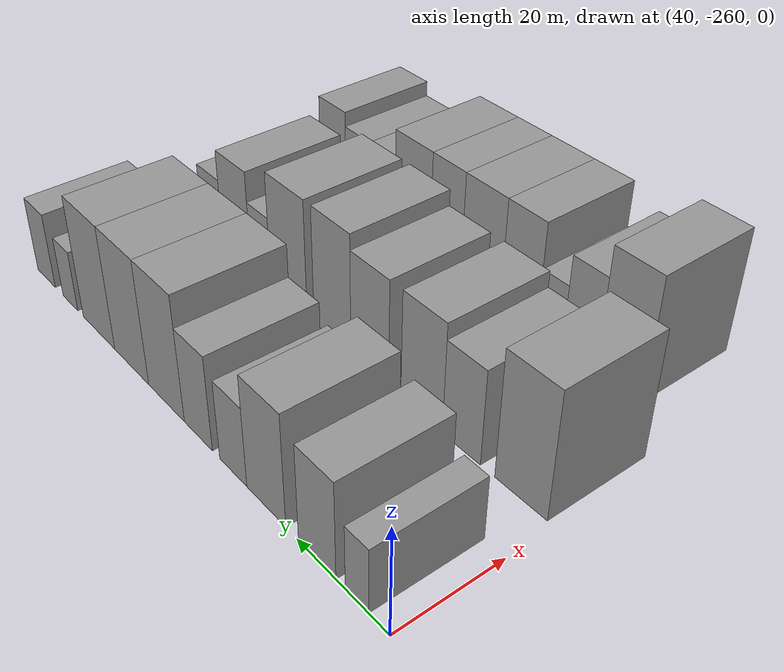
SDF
<sdf version="1.6">
 <world name="default">
  <model name="building_10">
   <static>1</static>
   <pose>50.0000 -253.2328 0 0.000000 0.000000 0.000000</pose>
   <link name="link">
    <pose>0 0 6.00 0 0 0</pose>
    <collision name="collision"><geometry><box><size>20.0000 4.9211 12.0000</size></box></geometry></collision>
    <visual name="visual">
     <cast_shadows>0</cast_shadows>
     <geometry><box><size>20.0000 4.9211 12.0000</size></box></geometry>
     <material>
      <script>
       <uri>model://grey_wall/materials/scripts</uri>
       <uri>model://grey_wall/materials/textures</uri>
       <name>vrc/grey_wall</name>
      </script>
     </material>
    </visual>
   </link>
  </model>
  <model name="building_11">
   <static>1</static>
   <pose>50.0000 -244.5584 0 0.000000 0.000000 0.000000</pose>
   <link name="link">
    <pose>0 0 9.00 0 0 0</pose>
    <collision name="collision"><geometry><box><size>20.0000 8.4279 18.0000</size></box></geometry></collision>
    <visual name="visual">
     <cast_shadows>0</cast_shadows>
     <geometry><box><size>20.0000 8.4279 18.0000</size></box></geometry>
     <material>
      <script>
       <uri>model://grey_wall/materials/scripts</uri>
       <uri>model://grey_wall/materials/textures</uri>
       <name>vrc/grey_wall</name>
      </script>
     </material>
    </visual>
   </link>
  </model>
  <model name="building_12">
   <static>1</static>
   <pose>50.0000 -232.5456 0 0.000000 0.000000 0.000000</pose>
   <link name="link">
    <pose>0 0 10.50 0 0 0</pose>
    <collision name="collision"><geometry><box><size>20.0000 9.5977 21.0000</size></box></geometry></collision>
    <visual name="visual">
     <cast_shadows>0</cast_shadows>
     <geometry><box><size>20.0000 9.5977 21.0000</size></box></geometry>
     <material>
      <script>
       <uri>model://grey_wall/materials/scripts</uri>
       <uri>model://grey_wall/materials/textures</uri>
       <name>vrc/grey_wall</name>
      </script>
     </material>
    </visual>
   </link>
  </model>
  <model name="building_13">
   <static>1</static>
   <pose>50.0000 -224.1726 0 0.000000 0.000000 0.000000</pose>
   <link name="link">
    <pose>0 0 7.50 0 0 0</pose>
    <collision name="collision"><geometry><box><size>20.0000 7.1484 15.0000</size></box></geometry></collision>
    <visual name="visual">
     <cast_shadows>0</cast_shadows>
     <geometry><box><size>20.0000 7.1484 15.0000</size></box></geometry>
     <material>
      <script>
       <uri>model://grey_wall/materials/scripts</uri>
       <uri>model://grey_wall/materials/textures</uri>
       <name>vrc/grey_wall</name>
      </script>
     </material>
    </visual>
   </link>
  </model>
  <model name="building_14">
   <static>1</static>
   <pose>50.0000 -214.6508 0 0.000000 0.000000 0.000000</pose>
   <link name="link">
    <pose>0 0 9.00 0 0 0</pose>
    <collision name="collision"><geometry><box><size>20.0000 7.8951 18.0000</size></box></geometry></collision>
    <visual name="visual">
     <cast_shadows>0</cast_shadows>
     <geometry><box><size>20.0000 7.8951 18.0000</size></box></geometry>
     <material>
      <script>
       <uri>model://grey_wall/materials/scripts</uri>
       <uri>model://grey_wall/materials/textures</uri>
       <name>vrc/grey_wall</name>
      </script>
     </material>
    </visual>
   </link>
  </model>
  <model name="building_15">
   <static>1</static>
   <pose>50.0000 -205.3336 0 0.000000 0.000000 0.000000</pose>
   <link name="link">
    <pose>0 0 12.00 0 0 0</pose>
    <collision name="collision"><geometry><box><size>20.0000 10.7393 24.0000</size></box></geometry></collision>
    <visual name="visual">
     <cast_shadows>0</cast_shadows>
     <geometry><box><size>20.0000 10.7393 24.0000</size></box></geometry>
     <material>
      <script>
       <uri>model://grey_wall/materials/scripts</uri>
       <uri>model://grey_wall/materials/textures</uri>
       <name>vrc/grey_wall</name>
      </script>
     </material>
    </visual>
   </link>
  </model>
  <model name="building_16">
   <static>1</static>
   <pose>50.0000 -194.4689 0 0.000000 0.000000 0.000000</pose>
   <link name="link">
    <pose>0 0 12.00 0 0 0</pose>
    <collision name="collision"><geometry><box><size>20.0000 10.9901 24.0000</size></box></geometry></collision>
    <visual name="visual">
     <cast_shadows>0</cast_shadows>
     <geometry><box><size>20.0000 10.9901 24.0000</size></box></geometry>
     <material>
      <script>
       <uri>model://grey_wall/materials/scripts</uri>
       <uri>model://grey_wall/materials/textures</uri>
       <name>vrc/grey_wall</name>
      </script>
     </material>
    </visual>
   </link>
  </model>
  <model name="building_17">
   <static>1</static>
   <pose>50.0000 -183.5001 0 0.000000 0.000000 0.000000</pose>
   <link name="link">
    <pose>0 0 12.00 0 0 0</pose>
    <collision name="collision"><geometry><box><size>20.0000 10.9474 24.0000</size></box></geometry></collision>
    <visual name="visual">
     <cast_shadows>0</cast_shadows>
     <geometry><box><size>20.0000 10.9474 24.0000</size></box></geometry>
     <material>
      <script>
       <uri>model://grey_wall/materials/scripts</uri>
       <uri>model://grey_wall/materials/textures</uri>
       <name>vrc/grey_wall</name>
      </script>
     </material>
    </visual>
   </link>
  </model>
  <model name="building_18">
   <static>1</static>
   <pose>50.0000 -173.3073 0 0.000000 0.000000 0.000000</pose>
   <link name="link">
    <pose>0 0 6.00 0 0 0</pose>
    <collision name="collision"><geometry><box><size>20.0000 5.4383 12.0000</size></box></geometry></collision>
    <visual name="visual">
     <cast_shadows>0</cast_shadows>
     <geometry><box><size>20.0000 5.4383 12.0000</size></box></geometry>
     <material>
      <script>
       <uri>model://grey_wall/materials/scripts</uri>
       <uri>model://grey_wall/materials/textures</uri>
       <name>vrc/grey_wall</name>
      </script>
     </material>
    </visual>
   </link>
  </model>
  <model name="building_19">
   <static>1</static>
   <pose>50.0000 -164.1934 0 0.000000 0.000000 0.000000</pose>
   <link name="link">
    <pose>0 0 7.50 0 0 0</pose>
    <collision name="collision"><geometry><box><size>20.0000 6.7896 15.0000</size></box></geometry></collision>
    <visual name="visual">
     <cast_shadows>0</cast_shadows>
     <geometry><box><size>20.0000 6.7896 15.0000</size></box></geometry>
     <material>
      <script>
       <uri>model://grey_wall/materials/scripts</uri>
       <uri>model://grey_wall/materials/textures</uri>
       <name>vrc/grey_wall</name>
      </script>
     </material>
    </visual>
   </link>
  </model>
  <model name="building_84">
   <static>1</static>
   <pose>79.0000 -253.3897 0 0.000000 0.000000 0.000000</pose>
   <link name="link">
    <pose>0 0 12.00 0 0 0</pose>
    <collision name="collision"><geometry><box><size>20.0000 10.6205 24.0000</size></box></geometry></collision>
    <visual name="visual">
     <cast_shadows>0</cast_shadows>
     <geometry><box><size>20.0000 10.6205 24.0000</size></box></geometry>
     <material>
      <script>
       <uri>model://grey_wall/materials/scripts</uri>
       <uri>model://grey_wall/materials/textures</uri>
       <name>vrc/grey_wall</name>
      </script>
     </material>
    </visual>
   </link>
  </model>
  <model name="building_85">
   <static>1</static>
   <pose>79.0000 -240.8766 0 0.000000 0.000000 0.000000</pose>
   <link name="link">
    <pose>0 0 9.00 0 0 0</pose>
    <collision name="collision"><geometry><box><size>20.0000 8.4058 18.0000</size></box></geometry></collision>
    <visual name="visual">
     <cast_shadows>0</cast_shadows>
     <geometry><box><size>20.0000 8.4058 18.0000</size></box></geometry>
     <material>
      <script>
       <uri>model://grey_wall/materials/scripts</uri>
       <uri>model://grey_wall/materials/textures</uri>
       <name>vrc/grey_wall</name>
      </script>
     </material>
    </visual>
   </link>
  </model>
  <model name="building_86">
   <static>1</static>
   <pose>79.0000 -231.7666 0 0.000000 0.000000 0.000000</pose>
   <link name="link">
    <pose>0 0 10.50 0 0 0</pose>
    <collision name="collision"><geometry><box><size>20.0000 9.8141 21.0000</size></box></geometry></collision>
    <visual name="visual">
     <cast_shadows>0</cast_shadows>
     <geometry><box><size>20.0000 9.8141 21.0000</size></box></geometry>
     <material>
      <script>
       <uri>model://grey_wall/materials/scripts</uri>
       <uri>model://grey_wall/materials/textures</uri>
       <name>vrc/grey_wall</name>
      </script>
     </material>
    </visual>
   </link>
  </model>
  <model name="building_87">
   <static>1</static>
   <pose>79.0000 -219.0505 0 0.000000 0.000000 0.000000</pose>
   <link name="link">
    <pose>0 0 10.50 0 0 0</pose>
    <collision name="collision"><geometry><box><size>20.0000 9.6182 21.0000</size></box></geometry></collision>
    <visual name="visual">
     <cast_shadows>0</cast_shadows>
     <geometry><box><size>20.0000 9.6182 21.0000</size></box></geometry>
     <material>
      <script>
       <uri>model://grey_wall/materials/scripts</uri>
       <uri>model://grey_wall/materials/textures</uri>
       <name>vrc/grey_wall</name>
      </script>
     </material>
    </visual>
   </link>
  </model>
  <model name="building_88">
   <static>1</static>
   <pose>79.0000 -209.2514 0 0.000000 0.000000 0.000000</pose>
   <link name="link">
    <pose>0 0 12.00 0 0 0</pose>
    <collision name="collision"><geometry><box><size>20.0000 9.9800 24.0000</size></box></geometry></collision>
    <visual name="visual">
     <cast_shadows>0</cast_shadows>
     <geometry><box><size>20.0000 9.9800 24.0000</size></box></geometry>
     <material>
      <script>
       <uri>model://grey_wall/materials/scripts</uri>
       <uri>model://grey_wall/materials/textures</uri>
       <name>vrc/grey_wall</name>
      </script>
     </material>
    </visual>
   </link>
  </model>
  <model name="building_89">
   <static>1</static>
   <pose>79.0000 -196.9439 0 0.000000 0.000000 0.000000</pose>
   <link name="link">
    <pose>0 0 12.00 0 0 0</pose>
    <collision name="collision"><geometry><box><size>20.0000 10.6351 24.0000</size></box></geometry></collision>
    <visual name="visual">
     <cast_shadows>0</cast_shadows>
     <geometry><box><size>20.0000 10.6351 24.0000</size></box></geometry>
     <material>
      <script>
       <uri>model://grey_wall/materials/scripts</uri>
       <uri>model://grey_wall/materials/textures</uri>
       <name>vrc/grey_wall</name>
      </script>
     </material>
    </visual>
   </link>
  </model>
  <model name="building_90">
   <static>1</static>
   <pose>79.0000 -188.5260 0 0.000000 0.000000 0.000000</pose>
   <link name="link">
    <pose>0 0 7.50 0 0 0</pose>
    <collision name="collision"><geometry><box><size>20.0000 6.2005 15.0000</size></box></geometry></collision>
    <visual name="visual">
     <cast_shadows>0</cast_shadows>
     <geometry><box><size>20.0000 6.2005 15.0000</size></box></geometry>
     <material>
      <script>
       <uri>model://grey_wall/materials/scripts</uri>
       <uri>model://grey_wall/materials/textures</uri>
       <name>vrc/grey_wall</name>
      </script>
     </material>
    </visual>
   </link>
  </model>
  <model name="building_91">
   <static>1</static>
   <pose>79.0000 -180.8947 0 0.000000 0.000000 0.000000</pose>
   <link name="link">
    <pose>0 0 10.50 0 0 0</pose>
    <collision name="collision"><geometry><box><size>20.0000 9.0622 21.0000</size></box></geometry></collision>
    <visual name="visual">
     <cast_shadows>0</cast_shadows>
     <geometry><box><size>20.0000 9.0622 21.0000</size></box></geometry>
     <material>
      <script>
       <uri>model://grey_wall/materials/scripts</uri>
       <uri>model://grey_wall/materials/textures</uri>
       <name>vrc/grey_wall</name>
      </script>
     </material>
    </visual>
   </link>
  </model>
  <model name="building_92">
   <static>1</static>
   <pose>79.0000 -172.8697 0 0.000000 0.000000 0.000000</pose>
   <link name="link">
    <pose>0 0 7.50 0 0 0</pose>
    <collision name="collision"><geometry><box><size>20.0000 6.9878 15.0000</size></box></geometry></collision>
    <visual name="visual">
     <cast_shadows>0</cast_shadows>
     <geometry><box><size>20.0000 6.9878 15.0000</size></box></geometry>
     <material>
      <script>
       <uri>model://grey_wall/materials/scripts</uri>
       <uri>model://grey_wall/materials/textures</uri>
       <name>vrc/grey_wall</name>
      </script>
     </material>
    </visual>
   </link>
  </model>
  <model name="building_162">
   <static>1</static>
   <pose>108.0000 -245.5852 0 0.000000 0.000000 0.000000</pose>
   <link name="link">
    <pose>0 0 12.00 0 0 0</pose>
    <collision name="collision"><geometry><box><size>20.0000 9.8881 24.0000</size></box></geometry></collision>
    <visual name="visual">
     <cast_shadows>0</cast_shadows>
     <geometry><box><size>20.0000 9.8881 24.0000</size></box></geometry>
     <material>
      <script>
       <uri>model://grey_wall/materials/scripts</uri>
       <uri>model://grey_wall/materials/textures</uri>
       <name>vrc/grey_wall</name>
      </script>
     </material>
    </visual>
   </link>
  </model>
  <model name="building_163">
   <static>1</static>
   <pose>108.0000 -236.9028 0 0.000000 0.000000 0.000000</pose>
   <link name="link">
    <pose>0 0 9.00 0 0 0</pose>
    <collision name="collision"><geometry><box><size>20.0000 7.4767 18.0000</size></box></geometry></collision>
    <visual name="visual">
     <cast_shadows>0</cast_shadows>
     <geometry><box><size>20.0000 7.4767 18.0000</size></box></geometry>
     <material>
      <script>
       <uri>model://grey_wall/materials/scripts</uri>
       <uri>model://grey_wall/materials/textures</uri>
       <name>vrc/grey_wall</name>
      </script>
     </material>
    </visual>
   </link>
  </model>
  <model name="building_164">
   <static>1</static>
   <pose>108.0000 -230.2446 0 0.000000 0.000000 0.000000</pose>
   <link name="link">
    <pose>0 0 6.00 0 0 0</pose>
    <collision name="collision"><geometry><box><size>20.0000 5.8397 12.0000</size></box></geometry></collision>
    <visual name="visual">
     <cast_shadows>0</cast_shadows>
     <geometry><box><size>20.0000 5.8397 12.0000</size></box></geometry>
     <material>
      <script>
       <uri>model://grey_wall/materials/scripts</uri>
       <uri>model://grey_wall/materials/textures</uri>
       <name>vrc/grey_wall</name>
      </script>
     </material>
    </visual>
   </link>
  </model>
  <model name="building_165">
   <static>1</static>
   <pose>108.0000 -222.8995 0 0.000000 0.000000 0.000000</pose>
   <link name="link">
    <pose>0 0 10.50 0 0 0</pose>
    <collision name="collision"><geometry><box><size>20.0000 8.8506 21.0000</size></box></geometry></collision>
    <visual name="visual">
     <cast_shadows>0</cast_shadows>
     <geometry><box><size>20.0000 8.8506 21.0000</size></box></geometry>
     <material>
      <script>
       <uri>model://grey_wall/materials/scripts</uri>
       <uri>model://grey_wall/materials/textures</uri>
       <name>vrc/grey_wall</name>
      </script>
     </material>
    </visual>
   </link>
  </model>
  <model name="building_166">
   <static>1</static>
   <pose>108.0000 -213.4013 0 0.000000 0.000000 0.000000</pose>
   <link name="link">
    <pose>0 0 10.50 0 0 0</pose>
    <collision name="collision"><geometry><box><size>20.0000 10.1459 21.0000</size></box></geometry></collision>
    <visual name="visual">
     <cast_shadows>0</cast_shadows>
     <geometry><box><size>20.0000 10.1459 21.0000</size></box></geometry>
     <material>
      <script>
       <uri>model://grey_wall/materials/scripts</uri>
       <uri>model://grey_wall/materials/textures</uri>
       <name>vrc/grey_wall</name>
      </script>
     </material>
    </visual>
   </link>
  </model>
  <model name="building_167">
   <static>1</static>
   <pose>108.0000 -204.1041 0 0.000000 0.000000 0.000000</pose>
   <link name="link">
    <pose>0 0 10.50 0 0 0</pose>
    <collision name="collision"><geometry><box><size>20.0000 8.4485 21.0000</size></box></geometry></collision>
    <visual name="visual">
     <cast_shadows>0</cast_shadows>
     <geometry><box><size>20.0000 8.4485 21.0000</size></box></geometry>
     <material>
      <script>
       <uri>model://grey_wall/materials/scripts</uri>
       <uri>model://grey_wall/materials/textures</uri>
       <name>vrc/grey_wall</name>
      </script>
     </material>
    </visual>
   </link>
  </model>
  <model name="building_168">
   <static>1</static>
   <pose>108.0000 -194.8472 0 0.000000 0.000000 0.000000</pose>
   <link name="link">
    <pose>0 0 10.50 0 0 0</pose>
    <collision name="collision"><geometry><box><size>20.0000 10.0652 21.0000</size></box></geometry></collision>
    <visual name="visual">
     <cast_shadows>0</cast_shadows>
     <geometry><box><size>20.0000 10.0652 21.0000</size></box></geometry>
     <material>
      <script>
       <uri>model://grey_wall/materials/scripts</uri>
       <uri>model://grey_wall/materials/textures</uri>
       <name>vrc/grey_wall</name>
      </script>
     </material>
    </visual>
   </link>
  </model>
  <model name="building_169">
   <static>1</static>
   <pose>108.0000 -186.0752 0 0.000000 0.000000 0.000000</pose>
   <link name="link">
    <pose>0 0 7.50 0 0 0</pose>
    <collision name="collision"><geometry><box><size>20.0000 7.4787 15.0000</size></box></geometry></collision>
    <visual name="visual">
     <cast_shadows>0</cast_shadows>
     <geometry><box><size>20.0000 7.4787 15.0000</size></box></geometry>
     <material>
      <script>
       <uri>model://grey_wall/materials/scripts</uri>
       <uri>model://grey_wall/materials/textures</uri>
       <name>vrc/grey_wall</name>
      </script>
     </material>
    </visual>
   </link>
  </model>
  <model name="building_170">
   <static>1</static>
   <pose>108.0000 -178.6299 0 0.000000 0.000000 0.000000</pose>
   <link name="link">
    <pose>0 0 7.50 0 0 0</pose>
    <collision name="collision"><geometry><box><size>20.0000 7.4118 15.0000</size></box></geometry></collision>
    <visual name="visual">
     <cast_shadows>0</cast_shadows>
     <geometry><box><size>20.0000 7.4118 15.0000</size></box></geometry>
     <material>
      <script>
       <uri>model://grey_wall/materials/scripts</uri>
       <uri>model://grey_wall/materials/textures</uri>
       <name>vrc/grey_wall</name>
      </script>
     </material>
    </visual>
   </link>
  </model>
  <model name="building_171">
   <static>1</static>
   <pose>108.0000 -170.8244 0 0.000000 0.000000 0.000000</pose>
   <link name="link">
    <pose>0 0 9.00 0 0 0</pose>
    <collision name="collision"><geometry><box><size>20.0000 8.1992 18.0000</size></box></geometry></collision>
    <visual name="visual">
     <cast_shadows>0</cast_shadows>
     <geometry><box><size>20.0000 8.1992 18.0000</size></box></geometry>
     <material>
      <script>
       <uri>model://grey_wall/materials/scripts</uri>
       <uri>model://grey_wall/materials/textures</uri>
       <name>vrc/grey_wall</name>
      </script>
     </material>
    </visual>
   </link>
  </model>
 </world>
</sdf>
